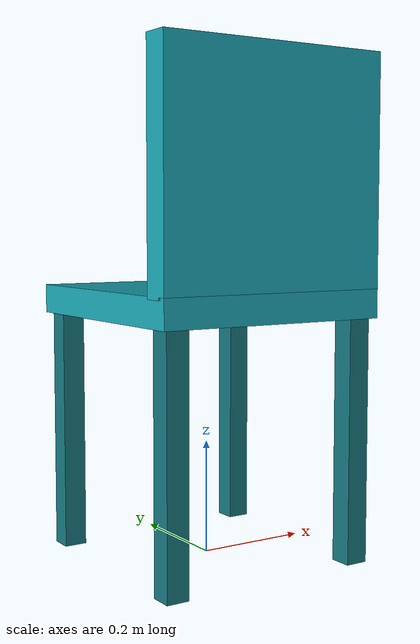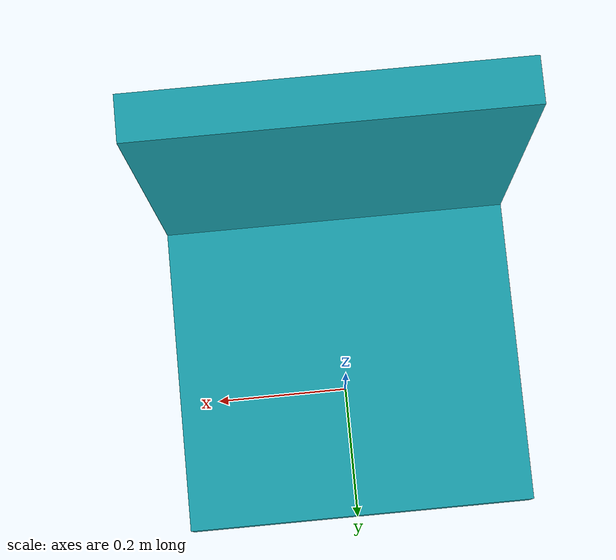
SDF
<?xml version="1.0"?>
<sdf version="1.7">
  <model name="target_chair">
    <static>true</static>
    <link name="link">

      <!-- Seat pan: top face at z = 0.475. -->
      <visual name="seat_visual">
        <pose>0 0 0.45 0 0 0</pose>
        <geometry><box><size>0.42 0.42 0.05</size></box></geometry>
        <material>
          <ambient>0.05 0.35 0.38 1</ambient>
          <diffuse>0.10 0.65 0.70 1</diffuse>
          <specular>0.10 0.10 0.10 1</specular>
        </material>
      </visual>
      <collision name="seat_collision">
        <pose>0 0 0.45 0 0 0</pose>
        <geometry><box><size>0.42 0.42 0.05</size></box></geometry>
      </collision>

      <!-- Backrest on the -Y side, top edge at z = 0.87. This is the tall silhouette
           that makes the chair readable at 12 m. -->
      <visual name="back_visual">
        <pose>0 -0.185 0.67 0 0 0</pose>
        <geometry><box><size>0.42 0.05 0.40</size></box></geometry>
        <material>
          <ambient>0.05 0.35 0.38 1</ambient>
          <diffuse>0.10 0.65 0.70 1</diffuse>
          <specular>0.10 0.10 0.10 1</specular>
        </material>
      </visual>
      <collision name="back_collision">
        <pose>0 -0.185 0.67 0 0 0</pose>
        <geometry><box><size>0.42 0.05 0.40</size></box></geometry>
      </collision>

      <!-- Four legs. Kept as separate boxes rather than one skirt so /scan returns a
           chair-like sparse footprint instead of a solid block. -->
      <visual name="leg_fl_visual">
        <pose>0.18 0.18 0.2125 0 0 0</pose>
        <geometry><box><size>0.04 0.04 0.425</size></box></geometry>
        <material>
          <ambient>0.04 0.22 0.24 1</ambient>
          <diffuse>0.08 0.45 0.48 1</diffuse>
        </material>
      </visual>
      <collision name="leg_fl_collision">
        <pose>0.18 0.18 0.2125 0 0 0</pose>
        <geometry><box><size>0.04 0.04 0.425</size></box></geometry>
      </collision>

      <visual name="leg_fr_visual">
        <pose>0.18 -0.18 0.2125 0 0 0</pose>
        <geometry><box><size>0.04 0.04 0.425</size></box></geometry>
        <material>
          <ambient>0.04 0.22 0.24 1</ambient>
          <diffuse>0.08 0.45 0.48 1</diffuse>
        </material>
      </visual>
      <collision name="leg_fr_collision">
        <pose>0.18 -0.18 0.2125 0 0 0</pose>
        <geometry><box><size>0.04 0.04 0.425</size></box></geometry>
      </collision>

      <visual name="leg_bl_visual">
        <pose>-0.18 0.18 0.2125 0 0 0</pose>
        <geometry><box><size>0.04 0.04 0.425</size></box></geometry>
        <material>
          <ambient>0.04 0.22 0.24 1</ambient>
          <diffuse>0.08 0.45 0.48 1</diffuse>
        </material>
      </visual>
      <collision name="leg_bl_collision">
        <pose>-0.18 0.18 0.2125 0 0 0</pose>
        <geometry><box><size>0.04 0.04 0.425</size></box></geometry>
      </collision>

      <visual name="leg_br_visual">
        <pose>-0.18 -0.18 0.2125 0 0 0</pose>
        <geometry><box><size>0.04 0.04 0.425</size></box></geometry>
        <material>
          <ambient>0.04 0.22 0.24 1</ambient>
          <diffuse>0.08 0.45 0.48 1</diffuse>
        </material>
      </visual>
      <collision name="leg_br_collision">
        <pose>-0.18 -0.18 0.2125 0 0 0</pose>
        <geometry><box><size>0.04 0.04 0.425</size></box></geometry>
      </collision>

    </link>
  </model>
</sdf>
